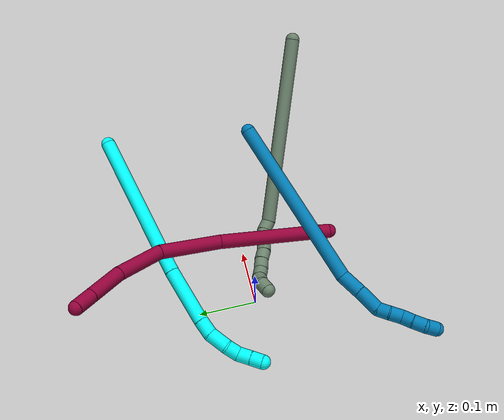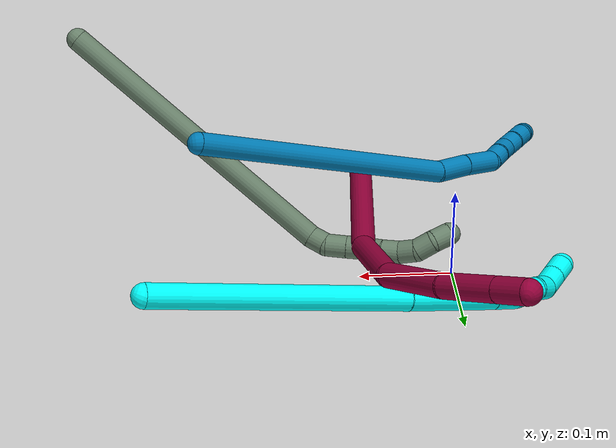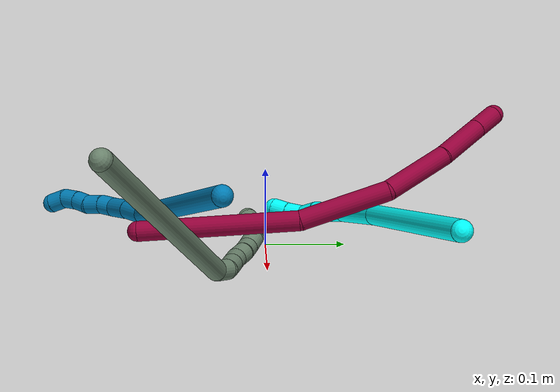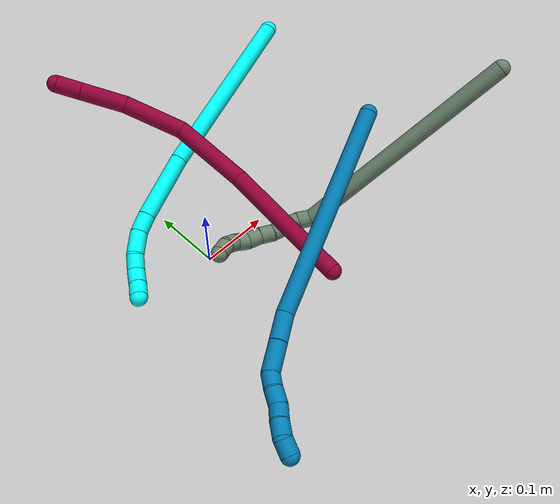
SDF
<sdf version="1.7">
 <world name="default">
  <model name="3">
   <static>0</static>
   <link name="3">
    <collision name="collision-cylinder-e_1_1_4">
     <pose>0.001723 -0.049345 0.125041 0.375868 0.012813 0.002437</pose>
     <geometry><cylinder><radius>0.0125</radius><length>0.268874</length></cylinder></geometry>
     <surface>
      <friction><ode><mu>1.16</mu><mu2>1.16</mu2><slip1>0</slip1><slip2>0</slip2></ode></friction>
      <contact><ode><kp>1e+06</kp><kd>1</kd><max_vel>0</max_vel><min_depth>0.001</min_depth></ode></contact>
     </surface>
    </collision>
    <visual name="visual-cylinder-e_1_1_4">
     <pose>0.001723 -0.049345 0.125041 0.375868 0.012813 0.002437</pose>
     <geometry><cylinder><radius>0.0125</radius><length>0.268874</length></cylinder></geometry>
     <material><ambient>0.003922 1 0.996078 1</ambient></material>
    </visual>
    <collision name="collision-cylinder-e_2_4_5">
     <pose>0.001564 -0.119449 0.295153 0.431629 -0.037897 -0.008309</pose>
     <geometry><cylinder><radius>0.0125</radius><length>0.099312</length></cylinder></geometry>
     <surface>
      <friction><ode><mu>1.16</mu><mu2>1.16</mu2><slip1>0</slip1><slip2>0</slip2></ode></friction>
      <contact><ode><kp>1e+06</kp><kd>1</kd><max_vel>0</max_vel><min_depth>0.001</min_depth></ode></contact>
     </surface>
    </collision>
    <visual name="visual-cylinder-e_2_4_5">
     <pose>0.001564 -0.119449 0.295153 0.431629 -0.037897 -0.008309</pose>
     <geometry><cylinder><radius>0.0125</radius><length>0.099312</length></cylinder></geometry>
     <material><ambient>0.003922 1 0.996078 1</ambient></material>
    </visual>
    <collision name="collision-cylinder-e_3_5_6">
     <pose>-0.001742 -0.146636 0.352458 0.483773 -0.102674 -0.025352</pose>
     <geometry><cylinder><radius>0.0125</radius><length>0.02779</length></cylinder></geometry>
     <surface>
      <friction><ode><mu>1.16</mu><mu2>1.16</mu2><slip1>0</slip1><slip2>0</slip2></ode></friction>
      <contact><ode><kp>1e+06</kp><kd>1</kd><max_vel>0</max_vel><min_depth>0.001</min_depth></ode></contact>
     </surface>
    </collision>
    <visual name="visual-cylinder-e_3_5_6">
     <pose>-0.001742 -0.146636 0.352458 0.483773 -0.102674 -0.025352</pose>
     <geometry><cylinder><radius>0.0125</radius><length>0.02779</length></cylinder></geometry>
     <material><ambient>0.003922 1 0.996078 1</ambient></material>
    </visual>
    <collision name="collision-cylinder-e_4_6_7">
     <pose>-0.006181 -0.165186 0.376831 0.784731 -0.174015 -0.072162</pose>
     <geometry><cylinder><radius>0.0125</radius><length>0.034832</length></cylinder></geometry>
     <surface>
      <friction><ode><mu>1.16</mu><mu2>1.16</mu2><slip1>0</slip1><slip2>0</slip2></ode></friction>
      <contact><ode><kp>1e+06</kp><kd>1</kd><max_vel>0</max_vel><min_depth>0.001</min_depth></ode></contact>
     </surface>
    </collision>
    <visual name="visual-cylinder-e_4_6_7">
     <pose>-0.006181 -0.165186 0.376831 0.784731 -0.174015 -0.072162</pose>
     <geometry><cylinder><radius>0.0125</radius><length>0.034832</length></cylinder></geometry>
     <material><ambient>0.003922 1 0.996078 1</ambient></material>
    </visual>
    <collision name="collision-cylinder-e_5_7_8">
     <pose>-0.01451 -0.184579 0.396211 0.787406 -0.477713 -0.201614</pose>
     <geometry><cylinder><radius>0.0125</radius><length>0.023116</length></cylinder></geometry>
     <surface>
      <friction><ode><mu>1.16</mu><mu2>1.16</mu2><slip1>0</slip1><slip2>0</slip2></ode></friction>
      <contact><ode><kp>1e+06</kp><kd>1</kd><max_vel>0</max_vel><min_depth>0.001</min_depth></ode></contact>
     </surface>
    </collision>
    <visual name="visual-cylinder-e_5_7_8">
     <pose>-0.01451 -0.184579 0.396211 0.787406 -0.477713 -0.201614</pose>
     <geometry><cylinder><radius>0.0125</radius><length>0.023116</length></cylinder></geometry>
     <material><ambient>0.003922 1 0.996078 1</ambient></material>
    </visual>
    <collision name="collision-cylinder-e_6_8_9">
     <pose>-0.021619 -0.202743 0.408472 1.13907 -0.148546 -0.095219</pose>
     <geometry><cylinder><radius>0.0125</radius><length>0.024251</length></cylinder></geometry>
     <surface>
      <friction><ode><mu>1.16</mu><mu2>1.16</mu2><slip1>0</slip1><slip2>0</slip2></ode></friction>
      <contact><ode><kp>1e+06</kp><kd>1</kd><max_vel>0</max_vel><min_depth>0.001</min_depth></ode></contact>
     </surface>
    </collision>
    <visual name="visual-cylinder-e_6_8_9">
     <pose>-0.021619 -0.202743 0.408472 1.13907 -0.148546 -0.095219</pose>
     <geometry><cylinder><radius>0.0125</radius><length>0.024251</length></cylinder></geometry>
     <material><ambient>0.003922 1 0.996078 1</ambient></material>
    </visual>
    <collision name="collision-cylinder-e_7_9_2">
     <pose>-0.024044 -0.223544 0.418018 1.14211 -0.057795 -0.037137</pose>
     <geometry><cylinder><radius>0.0125</radius><length>0.021825</length></cylinder></geometry>
     <surface>
      <friction><ode><mu>1.16</mu><mu2>1.16</mu2><slip1>0</slip1><slip2>0</slip2></ode></friction>
      <contact><ode><kp>1e+06</kp><kd>1</kd><max_vel>0</max_vel><min_depth>0.001</min_depth></ode></contact>
     </surface>
    </collision>
    <visual name="visual-cylinder-e_7_9_2">
     <pose>-0.024044 -0.223544 0.418018 1.14211 -0.057795 -0.037137</pose>
     <geometry><cylinder><radius>0.0125</radius><length>0.021825</length></cylinder></geometry>
     <material><ambient>0.003922 1 0.996078 1</ambient></material>
    </visual>
    <collision name="collision-sphere-2">
     <pose>-0.024674 -0.233452 0.422547 0 -0 0</pose>
     <geometry><sphere><radius>0.0125</radius></sphere></geometry>
     <surface>
      <friction><ode><mu>1.16</mu><mu2>1.16</mu2><slip1>0</slip1><slip2>0</slip2></ode></friction>
      <contact><ode><kp>1e+06</kp><kd>1</kd><max_vel>0</max_vel><min_depth>0.001</min_depth></ode></contact>
     </surface>
    </collision>
    <visual name="visual-sphere-2">
     <pose>-0.024674 -0.233452 0.422547 0 -0 0</pose>
     <geometry><sphere><radius>0.0125</radius></sphere></geometry>
     <material><ambient>0.003922 1 0.996078 1</ambient></material>
    </visual>
    <collision name="collision-sphere-9">
     <pose>-0.023413 -0.213635 0.41349 0 -0 0</pose>
     <geometry><sphere><radius>0.0125</radius></sphere></geometry>
     <surface>
      <friction><ode><mu>1.16</mu><mu2>1.16</mu2><slip1>0</slip1><slip2>0</slip2></ode></friction>
      <contact><ode><kp>1e+06</kp><kd>1</kd><max_vel>0</max_vel><min_depth>0.001</min_depth></ode></contact>
     </surface>
    </collision>
    <visual name="visual-sphere-9">
     <pose>-0.023413 -0.213635 0.41349 0 -0 0</pose>
     <geometry><sphere><radius>0.0125</radius></sphere></geometry>
     <material><ambient>0.003922 1 0.996078 1</ambient></material>
    </visual>
    <collision name="collision-sphere-4">
     <pose>0.003445 -0.09869 0.250083 0 -0 0</pose>
     <geometry><sphere><radius>0.0125</radius></sphere></geometry>
     <surface>
      <friction><ode><mu>1.16</mu><mu2>1.16</mu2><slip1>0</slip1><slip2>0</slip2></ode></friction>
      <contact><ode><kp>1e+06</kp><kd>1</kd><max_vel>0</max_vel><min_depth>0.001</min_depth></ode></contact>
     </surface>
    </collision>
    <visual name="visual-sphere-4">
     <pose>0.003445 -0.09869 0.250083 0 -0 0</pose>
     <geometry><sphere><radius>0.0125</radius></sphere></geometry>
     <material><ambient>0.003922 1 0.996078 1</ambient></material>
    </visual>
    <collision name="collision-sphere-1">
     <geometry><sphere><radius>0.0125</radius></sphere></geometry>
     <surface>
      <friction><ode><mu>1.16</mu><mu2>1.16</mu2><slip1>0</slip1><slip2>0</slip2></ode></friction>
      <contact><ode><kp>1e+06</kp><kd>1</kd><max_vel>0</max_vel><min_depth>0.001</min_depth></ode></contact>
     </surface>
    </collision>
    <visual name="visual-sphere-1">
     <geometry><sphere><radius>0.0125</radius></sphere></geometry>
     <material><ambient>0.003922 1 0.996078 1</ambient></material>
    </visual>
    <collision name="collision-sphere-8">
     <pose>-0.019824 -0.191852 0.403454 0 -0 0</pose>
     <geometry><sphere><radius>0.0125</radius></sphere></geometry>
     <surface>
      <friction><ode><mu>1.16</mu><mu2>1.16</mu2><slip1>0</slip1><slip2>0</slip2></ode></friction>
      <contact><ode><kp>1e+06</kp><kd>1</kd><max_vel>0</max_vel><min_depth>0.001</min_depth></ode></contact>
     </surface>
    </collision>
    <visual name="visual-sphere-8">
     <pose>-0.019824 -0.191852 0.403454 0 -0 0</pose>
     <geometry><sphere><radius>0.0125</radius></sphere></geometry>
     <material><ambient>0.003922 1 0.996078 1</ambient></material>
    </visual>
    <collision name="collision-sphere-5">
     <pose>-0.000318 -0.140208 0.340222 0 -0 0</pose>
     <geometry><sphere><radius>0.0125</radius></sphere></geometry>
     <surface>
      <friction><ode><mu>1.16</mu><mu2>1.16</mu2><slip1>0</slip1><slip2>0</slip2></ode></friction>
      <contact><ode><kp>1e+06</kp><kd>1</kd><max_vel>0</max_vel><min_depth>0.001</min_depth></ode></contact>
     </surface>
    </collision>
    <visual name="visual-sphere-5">
     <pose>-0.000318 -0.140208 0.340222 0 -0 0</pose>
     <geometry><sphere><radius>0.0125</radius></sphere></geometry>
     <material><ambient>0.003922 1 0.996078 1</ambient></material>
    </visual>
    <collision name="collision-sphere-6">
     <pose>-0.003166 -0.153065 0.364693 0 -0 0</pose>
     <geometry><sphere><radius>0.0125</radius></sphere></geometry>
     <surface>
      <friction><ode><mu>1.16</mu><mu2>1.16</mu2><slip1>0</slip1><slip2>0</slip2></ode></friction>
      <contact><ode><kp>1e+06</kp><kd>1</kd><max_vel>0</max_vel><min_depth>0.001</min_depth></ode></contact>
     </surface>
    </collision>
    <visual name="visual-sphere-6">
     <pose>-0.003166 -0.153065 0.364693 0 -0 0</pose>
     <geometry><sphere><radius>0.0125</radius></sphere></geometry>
     <material><ambient>0.003922 1 0.996078 1</ambient></material>
    </visual>
    <collision name="collision-sphere-7">
     <pose>-0.009197 -0.177307 0.388968 0 -0 0</pose>
     <geometry><sphere><radius>0.0125</radius></sphere></geometry>
     <surface>
      <friction><ode><mu>1.16</mu><mu2>1.16</mu2><slip1>0</slip1><slip2>0</slip2></ode></friction>
      <contact><ode><kp>1e+06</kp><kd>1</kd><max_vel>0</max_vel><min_depth>0.001</min_depth></ode></contact>
     </surface>
    </collision>
    <visual name="visual-sphere-7">
     <pose>-0.009197 -0.177307 0.388968 0 -0 0</pose>
     <geometry><sphere><radius>0.0125</radius></sphere></geometry>
     <material><ambient>0.003922 1 0.996078 1</ambient></material>
    </visual>
    <inertial>
     <pose>-0.002059 -0.098043 0.228082 0 -0 0</pose>
     <mass>0.5</mass>
     <inertia>
      <ixx>0.001729</ixx>
      <ixy>0</ixy>
      <ixz>0</ixz>
      <iyy>0.001587</iyy>
      <iyz>0</iyz>
      <izz>0.000661</izz>
     </inertia>
    </inertial>
   </link>
   <pose>0.318278 0.198905 0.116291 -2.40014 -1.02735 2.22705</pose>
  </model>
  <model name="8">
   <static>0</static>
   <link name="8">
    <collision name="collision-cylinder-e_1_1_4">
     <pose>-0.006684 0.027369 0.094649 -0.281487 -0.067739 0.009601</pose>
     <geometry><cylinder><radius>0.0125</radius><length>0.197507</length></cylinder></geometry>
     <surface>
      <friction><ode><mu>1.16</mu><mu2>1.16</mu2><slip1>0</slip1><slip2>0</slip2></ode></friction>
      <contact><ode><kp>1e+06</kp><kd>1</kd><max_vel>0</max_vel><min_depth>0.001</min_depth></ode></contact>
     </surface>
    </collision>
    <visual name="visual-cylinder-e_1_1_4">
     <pose>-0.006684 0.027369 0.094649 -0.281487 -0.067739 0.009601</pose>
     <geometry><cylinder><radius>0.0125</radius><length>0.197507</length></cylinder></geometry>
     <material><ambient>0.584314 0 0.227451 1</ambient></material>
    </visual>
    <collision name="collision-cylinder-e_2_4_5">
     <pose>-0.0311 0.076956 0.237947 -0.428398 -0.32014 0.070214</pose>
     <geometry><cylinder><radius>0.0125</radius><length>0.112689</length></cylinder></geometry>
     <surface>
      <friction><ode><mu>1.16</mu><mu2>1.16</mu2><slip1>0</slip1><slip2>0</slip2></ode></friction>
      <contact><ode><kp>1e+06</kp><kd>1</kd><max_vel>0</max_vel><min_depth>0.001</min_depth></ode></contact>
     </surface>
    </collision>
    <visual name="visual-cylinder-e_2_4_5">
     <pose>-0.0311 0.076956 0.237947 -0.428398 -0.32014 0.070214</pose>
     <geometry><cylinder><radius>0.0125</radius><length>0.112689</length></cylinder></geometry>
     <material><ambient>0.584314 0 0.227451 1</ambient></material>
    </visual>
    <collision name="collision-cylinder-e_3_5_6">
     <pose>-0.069662 0.127865 0.313478 -0.81796 -0.48721 0.214617</pose>
     <geometry><cylinder><radius>0.0125</radius><length>0.088989</length></cylinder></geometry>
     <surface>
      <friction><ode><mu>1.16</mu><mu2>1.16</mu2><slip1>0</slip1><slip2>0</slip2></ode></friction>
      <contact><ode><kp>1e+06</kp><kd>1</kd><max_vel>0</max_vel><min_depth>0.001</min_depth></ode></contact>
     </surface>
    </collision>
    <visual name="visual-cylinder-e_3_5_6">
     <pose>-0.069662 0.127865 0.313478 -0.81796 -0.48721 0.214617</pose>
     <geometry><cylinder><radius>0.0125</radius><length>0.088989</length></cylinder></geometry>
     <material><ambient>0.584314 0 0.227451 1</ambient></material>
    </visual>
    <collision name="collision-cylinder-e_4_6_7">
     <pose>-0.10698 0.180942 0.355278 -1.02176 -0.523143 0.297883</pose>
     <geometry><cylinder><radius>0.0125</radius><length>0.066001</length></cylinder></geometry>
     <surface>
      <friction><ode><mu>1.16</mu><mu2>1.16</mu2><slip1>0</slip1><slip2>0</slip2></ode></friction>
      <contact><ode><kp>1e+06</kp><kd>1</kd><max_vel>0</max_vel><min_depth>0.001</min_depth></ode></contact>
     </surface>
    </collision>
    <visual name="visual-cylinder-e_4_6_7">
     <pose>-0.10698 0.180942 0.355278 -1.02176 -0.523143 0.297883</pose>
     <geometry><cylinder><radius>0.0125</radius><length>0.066001</length></cylinder></geometry>
     <material><ambient>0.584314 0 0.227451 1</ambient></material>
    </visual>
    <collision name="collision-cylinder-e_5_7_2">
     <pose>-0.132148 0.218177 0.378103 -1.01916 -0.522078 0.296366</pose>
     <geometry><cylinder><radius>0.0125</radius><length>0.034814</length></cylinder></geometry>
     <surface>
      <friction><ode><mu>1.16</mu><mu2>1.16</mu2><slip1>0</slip1><slip2>0</slip2></ode></friction>
      <contact><ode><kp>1e+06</kp><kd>1</kd><max_vel>0</max_vel><min_depth>0.001</min_depth></ode></contact>
     </surface>
    </collision>
    <visual name="visual-cylinder-e_5_7_2">
     <pose>-0.132148 0.218177 0.378103 -1.01916 -0.522078 0.296366</pose>
     <geometry><cylinder><radius>0.0125</radius><length>0.034814</length></cylinder></geometry>
     <material><ambient>0.584314 0 0.227451 1</ambient></material>
    </visual>
    <collision name="collision-sphere-2">
     <pose>-0.140829 0.231027 0.386011 0 -0 0</pose>
     <geometry><sphere><radius>0.0125</radius></sphere></geometry>
     <surface>
      <friction><ode><mu>1.16</mu><mu2>1.16</mu2><slip1>0</slip1><slip2>0</slip2></ode></friction>
      <contact><ode><kp>1e+06</kp><kd>1</kd><max_vel>0</max_vel><min_depth>0.001</min_depth></ode></contact>
     </surface>
    </collision>
    <visual name="visual-sphere-2">
     <pose>-0.140829 0.231027 0.386011 0 -0 0</pose>
     <geometry><sphere><radius>0.0125</radius></sphere></geometry>
     <material><ambient>0.584314 0 0.227451 1</ambient></material>
    </visual>
    <collision name="collision-sphere-7">
     <pose>-0.123467 0.205327 0.370196 0 -0 0</pose>
     <geometry><sphere><radius>0.0125</radius></sphere></geometry>
     <surface>
      <friction><ode><mu>1.16</mu><mu2>1.16</mu2><slip1>0</slip1><slip2>0</slip2></ode></friction>
      <contact><ode><kp>1e+06</kp><kd>1</kd><max_vel>0</max_vel><min_depth>0.001</min_depth></ode></contact>
     </surface>
    </collision>
    <visual name="visual-sphere-7">
     <pose>-0.123467 0.205327 0.370196 0 -0 0</pose>
     <geometry><sphere><radius>0.0125</radius></sphere></geometry>
     <material><ambient>0.584314 0 0.227451 1</ambient></material>
    </visual>
    <collision name="collision-sphere-6">
     <pose>-0.090493 0.156557 0.340359 0 -0 0</pose>
     <geometry><sphere><radius>0.0125</radius></sphere></geometry>
     <surface>
      <friction><ode><mu>1.16</mu><mu2>1.16</mu2><slip1>0</slip1><slip2>0</slip2></ode></friction>
      <contact><ode><kp>1e+06</kp><kd>1</kd><max_vel>0</max_vel><min_depth>0.001</min_depth></ode></contact>
     </surface>
    </collision>
    <visual name="visual-sphere-6">
     <pose>-0.090493 0.156557 0.340359 0 -0 0</pose>
     <geometry><sphere><radius>0.0125</radius></sphere></geometry>
     <material><ambient>0.584314 0 0.227451 1</ambient></material>
    </visual>
    <collision name="collision-sphere-5">
     <pose>-0.048832 0.099173 0.286596 0 -0 0</pose>
     <geometry><sphere><radius>0.0125</radius></sphere></geometry>
     <surface>
      <friction><ode><mu>1.16</mu><mu2>1.16</mu2><slip1>0</slip1><slip2>0</slip2></ode></friction>
      <contact><ode><kp>1e+06</kp><kd>1</kd><max_vel>0</max_vel><min_depth>0.001</min_depth></ode></contact>
     </surface>
    </collision>
    <visual name="visual-sphere-5">
     <pose>-0.048832 0.099173 0.286596 0 -0 0</pose>
     <geometry><sphere><radius>0.0125</radius></sphere></geometry>
     <material><ambient>0.584314 0 0.227451 1</ambient></material>
    </visual>
    <collision name="collision-sphere-1">
     <geometry><sphere><radius>0.0125</radius></sphere></geometry>
     <surface>
      <friction><ode><mu>1.16</mu><mu2>1.16</mu2><slip1>0</slip1><slip2>0</slip2></ode></friction>
      <contact><ode><kp>1e+06</kp><kd>1</kd><max_vel>0</max_vel><min_depth>0.001</min_depth></ode></contact>
     </surface>
    </collision>
    <visual name="visual-sphere-1">
     <geometry><sphere><radius>0.0125</radius></sphere></geometry>
     <material><ambient>0.584314 0 0.227451 1</ambient></material>
    </visual>
    <collision name="collision-sphere-4">
     <pose>-0.013369 0.054739 0.189299 0 -0 0</pose>
     <geometry><sphere><radius>0.0125</radius></sphere></geometry>
     <surface>
      <friction><ode><mu>1.16</mu><mu2>1.16</mu2><slip1>0</slip1><slip2>0</slip2></ode></friction>
      <contact><ode><kp>1e+06</kp><kd>1</kd><max_vel>0</max_vel><min_depth>0.001</min_depth></ode></contact>
     </surface>
    </collision>
    <visual name="visual-sphere-4">
     <pose>-0.013369 0.054739 0.189299 0 -0 0</pose>
     <geometry><sphere><radius>0.0125</radius></sphere></geometry>
     <material><ambient>0.584314 0 0.227451 1</ambient></material>
    </visual>
    <inertial>
     <pose>-0.045371 0.089988 0.220032 0 -0 0</pose>
     <mass>0.5</mass>
     <inertia>
      <ixx>0.000868</ixx>
      <ixy>0</ixy>
      <ixz>0</ixz>
      <iyy>0.000855</iyy>
      <iyz>0</iyz>
      <izz>-0.000134</izz>
     </inertia>
    </inertial>
   </link>
   <pose>0.085495 -0.15665 0.045653 -1.20466 1.33478 -0.008594</pose>
  </model>
  <model name="9">
   <static>0</static>
   <link name="9">
    <collision name="collision-cylinder-e_1_1_4">
     <pose>0.005553 -0.058664 -0.143238 2.75288 0.035858 0.181683</pose>
     <geometry><cylinder><radius>0.0125</radius><length>0.309771</length></cylinder></geometry>
     <surface>
      <friction><ode><mu>1.16</mu><mu2>1.16</mu2><slip1>0</slip1><slip2>0</slip2></ode></friction>
      <contact><ode><kp>1e+06</kp><kd>1</kd><max_vel>0</max_vel><min_depth>0.001</min_depth></ode></contact>
     </surface>
    </collision>
    <visual name="visual-cylinder-e_1_1_4">
     <pose>0.005553 -0.058664 -0.143238 2.75288 0.035858 0.181683</pose>
     <geometry><cylinder><radius>0.0125</radius><length>0.309771</length></cylinder></geometry>
     <material><ambient>0 0.490196 0.709804 1</ambient></material>
    </visual>
    <collision name="collision-cylinder-e_2_4_5">
     <pose>0.005928 -0.123874 -0.304929 2.8007 -0.258506 -1.2936</pose>
     <geometry><cylinder><radius>0.0125</radius><length>0.040504</length></cylinder></geometry>
     <surface>
      <friction><ode><mu>1.16</mu><mu2>1.16</mu2><slip1>0</slip1><slip2>0</slip2></ode></friction>
      <contact><ode><kp>1e+06</kp><kd>1</kd><max_vel>0</max_vel><min_depth>0.001</min_depth></ode></contact>
     </surface>
    </collision>
    <visual name="visual-cylinder-e_2_4_5">
     <pose>0.005928 -0.123874 -0.304929 2.8007 -0.258506 -1.2936</pose>
     <geometry><cylinder><radius>0.0125</radius><length>0.040504</length></cylinder></geometry>
     <material><ambient>0 0.490196 0.709804 1</ambient></material>
    </visual>
    <collision name="collision-cylinder-e_3_5_6">
     <pose>-0.003495 -0.138254 -0.342609 2.75464 -0.201741 -0.953665</pose>
     <geometry><cylinder><radius>0.0125</radius><length>0.042384</length></cylinder></geometry>
     <surface>
      <friction><ode><mu>1.16</mu><mu2>1.16</mu2><slip1>0</slip1><slip2>0</slip2></ode></friction>
      <contact><ode><kp>1e+06</kp><kd>1</kd><max_vel>0</max_vel><min_depth>0.001</min_depth></ode></contact>
     </surface>
    </collision>
    <visual name="visual-cylinder-e_3_5_6">
     <pose>-0.003495 -0.138254 -0.342609 2.75464 -0.201741 -0.953665</pose>
     <geometry><cylinder><radius>0.0125</radius><length>0.042384</length></cylinder></geometry>
     <material><ambient>0 0.490196 0.709804 1</ambient></material>
    </visual>
    <collision name="collision-cylinder-e_4_6_7">
     <pose>-0.013823 -0.150594 -0.368836 2.56978 -0.630924 -1.67516</pose>
     <geometry><cylinder><radius>0.0125</radius><length>0.020619</length></cylinder></geometry>
     <surface>
      <friction><ode><mu>1.16</mu><mu2>1.16</mu2><slip1>0</slip1><slip2>0</slip2></ode></friction>
      <contact><ode><kp>1e+06</kp><kd>1</kd><max_vel>0</max_vel><min_depth>0.001</min_depth></ode></contact>
     </surface>
    </collision>
    <visual name="visual-cylinder-e_4_6_7">
     <pose>-0.013823 -0.150594 -0.368836 2.56978 -0.630924 -1.67516</pose>
     <geometry><cylinder><radius>0.0125</radius><length>0.020619</length></cylinder></geometry>
     <material><ambient>0 0.490196 0.709804 1</ambient></material>
    </visual>
    <collision name="collision-cylinder-e_5_7_8">
     <pose>-0.025958 -0.162064 -0.382615 2.34263 -0.557089 -1.19077</pose>
     <geometry><cylinder><radius>0.0125</radius><length>0.022899</length></cylinder></geometry>
     <surface>
      <friction><ode><mu>1.16</mu><mu2>1.16</mu2><slip1>0</slip1><slip2>0</slip2></ode></friction>
      <contact><ode><kp>1e+06</kp><kd>1</kd><max_vel>0</max_vel><min_depth>0.001</min_depth></ode></contact>
     </surface>
    </collision>
    <visual name="visual-cylinder-e_5_7_8">
     <pose>-0.025958 -0.162064 -0.382615 2.34263 -0.557089 -1.19077</pose>
     <geometry><cylinder><radius>0.0125</radius><length>0.022899</length></cylinder></geometry>
     <material><ambient>0 0.490196 0.709804 1</ambient></material>
    </visual>
    <collision name="collision-cylinder-e_6_8_9">
     <pose>-0.037592 -0.172377 -0.396995 2.72666 -0.591517 -1.93249</pose>
     <geometry><cylinder><radius>0.0125</radius><length>0.020014</length></cylinder></geometry>
     <surface>
      <friction><ode><mu>1.16</mu><mu2>1.16</mu2><slip1>0</slip1><slip2>0</slip2></ode></friction>
      <contact><ode><kp>1e+06</kp><kd>1</kd><max_vel>0</max_vel><min_depth>0.001</min_depth></ode></contact>
     </surface>
    </collision>
    <visual name="visual-cylinder-e_6_8_9">
     <pose>-0.037592 -0.172377 -0.396995 2.72666 -0.591517 -1.93249</pose>
     <geometry><cylinder><radius>0.0125</radius><length>0.020014</length></cylinder></geometry>
     <material><ambient>0 0.490196 0.709804 1</ambient></material>
    </visual>
    <collision name="collision-cylinder-e_7_9_10">
     <pose>-0.049309 -0.181049 -0.412269 2.53501 -0.581426 -1.52586</pose>
     <geometry><cylinder><radius>0.0125</radius><length>0.022348</length></cylinder></geometry>
     <surface>
      <friction><ode><mu>1.16</mu><mu2>1.16</mu2><slip1>0</slip1><slip2>0</slip2></ode></friction>
      <contact><ode><kp>1e+06</kp><kd>1</kd><max_vel>0</max_vel><min_depth>0.001</min_depth></ode></contact>
     </surface>
    </collision>
    <visual name="visual-cylinder-e_7_9_10">
     <pose>-0.049309 -0.181049 -0.412269 2.53501 -0.581426 -1.52586</pose>
     <geometry><cylinder><radius>0.0125</radius><length>0.022348</length></cylinder></geometry>
     <material><ambient>0 0.490196 0.709804 1</ambient></material>
    </visual>
    <collision name="collision-cylinder-e_8_10_2">
     <pose>-0.059615 -0.195207 -0.424381 2.03649 -0.399057 -0.633793</pose>
     <geometry><cylinder><radius>0.0125</radius><length>0.021461</length></cylinder></geometry>
     <surface>
      <friction><ode><mu>1.16</mu><mu2>1.16</mu2><slip1>0</slip1><slip2>0</slip2></ode></friction>
      <contact><ode><kp>1e+06</kp><kd>1</kd><max_vel>0</max_vel><min_depth>0.001</min_depth></ode></contact>
     </surface>
    </collision>
    <visual name="visual-cylinder-e_8_10_2">
     <pose>-0.059615 -0.195207 -0.424381 2.03649 -0.399057 -0.633793</pose>
     <geometry><cylinder><radius>0.0125</radius><length>0.021461</length></cylinder></geometry>
     <material><ambient>0 0.490196 0.709804 1</ambient></material>
    </visual>
    <collision name="collision-sphere-2">
     <pose>-0.063785 -0.204041 -0.42882 0 -0 0</pose>
     <geometry><sphere><radius>0.0125</radius></sphere></geometry>
     <surface>
      <friction><ode><mu>1.16</mu><mu2>1.16</mu2><slip1>0</slip1><slip2>0</slip2></ode></friction>
      <contact><ode><kp>1e+06</kp><kd>1</kd><max_vel>0</max_vel><min_depth>0.001</min_depth></ode></contact>
     </surface>
    </collision>
    <visual name="visual-sphere-2">
     <pose>-0.063785 -0.204041 -0.42882 0 -0 0</pose>
     <geometry><sphere><radius>0.0125</radius></sphere></geometry>
     <material><ambient>0 0.490196 0.709804 1</ambient></material>
    </visual>
    <collision name="collision-sphere-10">
     <pose>-0.055446 -0.186372 -0.419941 0 -0 0</pose>
     <geometry><sphere><radius>0.0125</radius></sphere></geometry>
     <surface>
      <friction><ode><mu>1.16</mu><mu2>1.16</mu2><slip1>0</slip1><slip2>0</slip2></ode></friction>
      <contact><ode><kp>1e+06</kp><kd>1</kd><max_vel>0</max_vel><min_depth>0.001</min_depth></ode></contact>
     </surface>
    </collision>
    <visual name="visual-sphere-10">
     <pose>-0.055446 -0.186372 -0.419941 0 -0 0</pose>
     <geometry><sphere><radius>0.0125</radius></sphere></geometry>
     <material><ambient>0 0.490196 0.709804 1</ambient></material>
    </visual>
    <collision name="collision-sphere-9">
     <pose>-0.043172 -0.175726 -0.404597 0 -0 0</pose>
     <geometry><sphere><radius>0.0125</radius></sphere></geometry>
     <surface>
      <friction><ode><mu>1.16</mu><mu2>1.16</mu2><slip1>0</slip1><slip2>0</slip2></ode></friction>
      <contact><ode><kp>1e+06</kp><kd>1</kd><max_vel>0</max_vel><min_depth>0.001</min_depth></ode></contact>
     </surface>
    </collision>
    <visual name="visual-sphere-9">
     <pose>-0.043172 -0.175726 -0.404597 0 -0 0</pose>
     <geometry><sphere><radius>0.0125</radius></sphere></geometry>
     <material><ambient>0 0.490196 0.709804 1</ambient></material>
    </visual>
    <collision name="collision-sphere-4">
     <pose>0.011105 -0.117328 -0.286477 0 -0 0</pose>
     <geometry><sphere><radius>0.0125</radius></sphere></geometry>
     <surface>
      <friction><ode><mu>1.16</mu><mu2>1.16</mu2><slip1>0</slip1><slip2>0</slip2></ode></friction>
      <contact><ode><kp>1e+06</kp><kd>1</kd><max_vel>0</max_vel><min_depth>0.001</min_depth></ode></contact>
     </surface>
    </collision>
    <visual name="visual-sphere-4">
     <pose>0.011105 -0.117328 -0.286477 0 -0 0</pose>
     <geometry><sphere><radius>0.0125</radius></sphere></geometry>
     <material><ambient>0 0.490196 0.709804 1</ambient></material>
    </visual>
    <collision name="collision-sphere-1">
     <geometry><sphere><radius>0.0125</radius></sphere></geometry>
     <surface>
      <friction><ode><mu>1.16</mu><mu2>1.16</mu2><slip1>0</slip1><slip2>0</slip2></ode></friction>
      <contact><ode><kp>1e+06</kp><kd>1</kd><max_vel>0</max_vel><min_depth>0.001</min_depth></ode></contact>
     </surface>
    </collision>
    <visual name="visual-sphere-1">
     <geometry><sphere><radius>0.0125</radius></sphere></geometry>
     <material><ambient>0 0.490196 0.709804 1</ambient></material>
    </visual>
    <collision name="collision-sphere-8">
     <pose>-0.032012 -0.169029 -0.389393 0 -0 0</pose>
     <geometry><sphere><radius>0.0125</radius></sphere></geometry>
     <surface>
      <friction><ode><mu>1.16</mu><mu2>1.16</mu2><slip1>0</slip1><slip2>0</slip2></ode></friction>
      <contact><ode><kp>1e+06</kp><kd>1</kd><max_vel>0</max_vel><min_depth>0.001</min_depth></ode></contact>
     </surface>
    </collision>
    <visual name="visual-sphere-8">
     <pose>-0.032012 -0.169029 -0.389393 0 -0 0</pose>
     <geometry><sphere><radius>0.0125</radius></sphere></geometry>
     <material><ambient>0 0.490196 0.709804 1</ambient></material>
    </visual>
    <collision name="collision-sphere-5">
     <pose>0.000751 -0.13042 -0.323382 0 -0 0</pose>
     <geometry><sphere><radius>0.0125</radius></sphere></geometry>
     <surface>
      <friction><ode><mu>1.16</mu><mu2>1.16</mu2><slip1>0</slip1><slip2>0</slip2></ode></friction>
      <contact><ode><kp>1e+06</kp><kd>1</kd><max_vel>0</max_vel><min_depth>0.001</min_depth></ode></contact>
     </surface>
    </collision>
    <visual name="visual-sphere-5">
     <pose>0.000751 -0.13042 -0.323382 0 -0 0</pose>
     <geometry><sphere><radius>0.0125</radius></sphere></geometry>
     <material><ambient>0 0.490196 0.709804 1</ambient></material>
    </visual>
    <collision name="collision-sphere-6">
     <pose>-0.007742 -0.146089 -0.361836 0 -0 0</pose>
     <geometry><sphere><radius>0.0125</radius></sphere></geometry>
     <surface>
      <friction><ode><mu>1.16</mu><mu2>1.16</mu2><slip1>0</slip1><slip2>0</slip2></ode></friction>
      <contact><ode><kp>1e+06</kp><kd>1</kd><max_vel>0</max_vel><min_depth>0.001</min_depth></ode></contact>
     </surface>
    </collision>
    <visual name="visual-sphere-6">
     <pose>-0.007742 -0.146089 -0.361836 0 -0 0</pose>
     <geometry><sphere><radius>0.0125</radius></sphere></geometry>
     <material><ambient>0 0.490196 0.709804 1</ambient></material>
    </visual>
    <collision name="collision-sphere-7">
     <pose>-0.019905 -0.155099 -0.375837 0 -0 0</pose>
     <geometry><sphere><radius>0.0125</radius></sphere></geometry>
     <surface>
      <friction><ode><mu>1.16</mu><mu2>1.16</mu2><slip1>0</slip1><slip2>0</slip2></ode></friction>
      <contact><ode><kp>1e+06</kp><kd>1</kd><max_vel>0</max_vel><min_depth>0.001</min_depth></ode></contact>
     </surface>
    </collision>
    <visual name="visual-sphere-7">
     <pose>-0.019905 -0.155099 -0.375837 0 -0 0</pose>
     <geometry><sphere><radius>0.0125</radius></sphere></geometry>
     <material><ambient>0 0.490196 0.709804 1</ambient></material>
    </visual>
    <inertial>
     <pose>-0.004402 -0.095102 -0.227752 0 -0 0</pose>
     <mass>0.5</mass>
     <inertia>
      <ixx>0.00288</ixx>
      <ixy>0</ixy>
      <ixz>0</ixz>
      <iyy>-0.001848</iyy>
      <iyz>0</iyz>
      <izz>0.000838</izz>
     </inertia>
    </inertial>
   </link>
   <pose>0.268201 -0.051594 0.14142 1.55531 0.689715 1.69705</pose>
  </model>
  <model name="17">
   <static>0</static>
   <link name="17">
    <collision name="collision-cylinder-e_1_1_4">
     <pose>-0.000366 0.000151 -0.168251 -3.1407 -0.002175 2.35884</pose>
     <geometry><cylinder><radius>0.0125</radius><length>0.336504</length></cylinder></geometry>
     <surface>
      <friction><ode><mu>1.16</mu><mu2>1.16</mu2><slip1>0</slip1><slip2>0</slip2></ode></friction>
      <contact><ode><kp>1e+06</kp><kd>1</kd><max_vel>0</max_vel><min_depth>0.001</min_depth></ode></contact>
     </surface>
    </collision>
    <visual name="visual-cylinder-e_1_1_4">
     <pose>-0.000366 0.000151 -0.168251 -3.1407 -0.002175 2.35884</pose>
     <geometry><cylinder><radius>0.0125</radius><length>0.336504</length></cylinder></geometry>
     <material><ambient>0.415686 0.509804 0.423529 1</ambient></material>
    </visual>
    <collision name="collision-cylinder-e_2_4_5">
     <pose>-0.002368 0.005147 -0.345328 -2.63957 -0.161091 0.609954</pose>
     <geometry><cylinder><radius>0.0125</radius><length>0.020399</length></cylinder></geometry>
     <surface>
      <friction><ode><mu>1.16</mu><mu2>1.16</mu2><slip1>0</slip1><slip2>0</slip2></ode></friction>
      <contact><ode><kp>1e+06</kp><kd>1</kd><max_vel>0</max_vel><min_depth>0.001</min_depth></ode></contact>
     </surface>
    </collision>
    <visual name="visual-cylinder-e_2_4_5">
     <pose>-0.002368 0.005147 -0.345328 -2.63957 -0.161091 0.609954</pose>
     <geometry><cylinder><radius>0.0125</radius><length>0.020399</length></cylinder></geometry>
     <material><ambient>0.415686 0.509804 0.423529 1</ambient></material>
    </visual>
    <collision name="collision-cylinder-e_3_5_6">
     <pose>-0.010264 0.012768 -0.363288 -2.84641 -0.580332 2.21765</pose>
     <geometry><cylinder><radius>0.0125</radius><length>0.022833</length></cylinder></geometry>
     <surface>
      <friction><ode><mu>1.16</mu><mu2>1.16</mu2><slip1>0</slip1><slip2>0</slip2></ode></friction>
      <contact><ode><kp>1e+06</kp><kd>1</kd><max_vel>0</max_vel><min_depth>0.001</min_depth></ode></contact>
     </surface>
    </collision>
    <visual name="visual-cylinder-e_3_5_6">
     <pose>-0.010264 0.012768 -0.363288 -2.84641 -0.580332 2.21765</pose>
     <geometry><cylinder><radius>0.0125</radius><length>0.022833</length></cylinder></geometry>
     <material><ambient>0.415686 0.509804 0.423529 1</ambient></material>
    </visual>
    <collision name="collision-cylinder-e_4_6_7">
     <pose>-0.022203 0.018034 -0.380411 -2.83967 -0.596352 2.22237</pose>
     <geometry><cylinder><radius>0.0125</radius><length>0.020224</length></cylinder></geometry>
     <surface>
      <friction><ode><mu>1.16</mu><mu2>1.16</mu2><slip1>0</slip1><slip2>0</slip2></ode></friction>
      <contact><ode><kp>1e+06</kp><kd>1</kd><max_vel>0</max_vel><min_depth>0.001</min_depth></ode></contact>
     </surface>
    </collision>
    <visual name="visual-cylinder-e_4_6_7">
     <pose>-0.022203 0.018034 -0.380411 -2.83967 -0.596352 2.22237</pose>
     <geometry><cylinder><radius>0.0125</radius><length>0.020224</length></cylinder></geometry>
     <material><ambient>0.415686 0.509804 0.423529 1</ambient></material>
    </visual>
    <collision name="collision-cylinder-e_5_7_8">
     <pose>-0.032608 0.025084 -0.395953 -2.59823 -0.49167 1.46642</pose>
     <geometry><cylinder><radius>0.0125</radius><length>0.020021</length></cylinder></geometry>
     <surface>
      <friction><ode><mu>1.16</mu><mu2>1.16</mu2><slip1>0</slip1><slip2>0</slip2></ode></friction>
      <contact><ode><kp>1e+06</kp><kd>1</kd><max_vel>0</max_vel><min_depth>0.001</min_depth></ode></contact>
     </surface>
    </collision>
    <visual name="visual-cylinder-e_5_7_8">
     <pose>-0.032608 0.025084 -0.395953 -2.59823 -0.49167 1.46642</pose>
     <geometry><cylinder><radius>0.0125</radius><length>0.020021</length></cylinder></geometry>
     <material><ambient>0.415686 0.509804 0.423529 1</ambient></material>
    </visual>
    <collision name="collision-cylinder-e_6_8_9">
     <pose>-0.042947 0.032654 -0.411219 -2.76982 -0.595879 2.04261</pose>
     <geometry><cylinder><radius>0.0125</radius><length>0.020003</length></cylinder></geometry>
     <surface>
      <friction><ode><mu>1.16</mu><mu2>1.16</mu2><slip1>0</slip1><slip2>0</slip2></ode></friction>
      <contact><ode><kp>1e+06</kp><kd>1</kd><max_vel>0</max_vel><min_depth>0.001</min_depth></ode></contact>
     </surface>
    </collision>
    <visual name="visual-cylinder-e_6_8_9">
     <pose>-0.042947 0.032654 -0.411219 -2.76982 -0.595879 2.04261</pose>
     <geometry><cylinder><radius>0.0125</radius><length>0.020003</length></cylinder></geometry>
     <material><ambient>0.415686 0.509804 0.423529 1</ambient></material>
    </visual>
    <collision name="collision-cylinder-e_7_9_10">
     <pose>-0.054866 0.040821 -0.424729 -2.41434 -0.682277 1.5014</pose>
     <geometry><cylinder><radius>0.0125</radius><length>0.02</length></cylinder></geometry>
     <surface>
      <friction><ode><mu>1.16</mu><mu2>1.16</mu2><slip1>0</slip1><slip2>0</slip2></ode></friction>
      <contact><ode><kp>1e+06</kp><kd>1</kd><max_vel>0</max_vel><min_depth>0.001</min_depth></ode></contact>
     </surface>
    </collision>
    <visual name="visual-cylinder-e_7_9_10">
     <pose>-0.054866 0.040821 -0.424729 -2.41434 -0.682277 1.5014</pose>
     <geometry><cylinder><radius>0.0125</radius><length>0.02</length></cylinder></geometry>
     <material><ambient>0.415686 0.509804 0.423529 1</ambient></material>
    </visual>
    <collision name="collision-cylinder-e_8_10_11">
     <pose>-0.070217 0.048779 -0.433744 -2.42567 -1.13031 2.0757</pose>
     <geometry><cylinder><radius>0.0125</radius><length>0.02</length></cylinder></geometry>
     <surface>
      <friction><ode><mu>1.16</mu><mu2>1.16</mu2><slip1>0</slip1><slip2>0</slip2></ode></friction>
      <contact><ode><kp>1e+06</kp><kd>1</kd><max_vel>0</max_vel><min_depth>0.001</min_depth></ode></contact>
     </surface>
    </collision>
    <visual name="visual-cylinder-e_8_10_11">
     <pose>-0.070217 0.048779 -0.433744 -2.42567 -1.13031 2.0757</pose>
     <geometry><cylinder><radius>0.0125</radius><length>0.02</length></cylinder></geometry>
     <material><ambient>0.415686 0.509804 0.423529 1</ambient></material>
    </visual>
    <collision name="collision-cylinder-e_9_11_2">
     <pose>-0.088243 0.05027 -0.441178 2.84082 -1.11378 -2.66413</pose>
     <geometry><cylinder><radius>0.0125</radius><length>0.020015</length></cylinder></geometry>
     <surface>
      <friction><ode><mu>1.16</mu><mu2>1.16</mu2><slip1>0</slip1><slip2>0</slip2></ode></friction>
      <contact><ode><kp>1e+06</kp><kd>1</kd><max_vel>0</max_vel><min_depth>0.001</min_depth></ode></contact>
     </surface>
    </collision>
    <visual name="visual-cylinder-e_9_11_2">
     <pose>-0.088243 0.05027 -0.441178 2.84082 -1.11378 -2.66413</pose>
     <geometry><cylinder><radius>0.0125</radius><length>0.020015</length></cylinder></geometry>
     <material><ambient>0.415686 0.509804 0.423529 1</ambient></material>
    </visual>
    <collision name="collision-sphere-2">
     <pose>-0.097224 0.048961 -0.445396 0 -0 0</pose>
     <geometry><sphere><radius>0.0125</radius></sphere></geometry>
     <surface>
      <friction><ode><mu>1.16</mu><mu2>1.16</mu2><slip1>0</slip1><slip2>0</slip2></ode></friction>
      <contact><ode><kp>1e+06</kp><kd>1</kd><max_vel>0</max_vel><min_depth>0.001</min_depth></ode></contact>
     </surface>
    </collision>
    <visual name="visual-sphere-2">
     <pose>-0.097224 0.048961 -0.445396 0 -0 0</pose>
     <geometry><sphere><radius>0.0125</radius></sphere></geometry>
     <material><ambient>0.415686 0.509804 0.423529 1</ambient></material>
    </visual>
    <collision name="collision-sphere-11">
     <pose>-0.079263 0.051578 -0.436961 0 -0 0</pose>
     <geometry><sphere><radius>0.0125</radius></sphere></geometry>
     <surface>
      <friction><ode><mu>1.16</mu><mu2>1.16</mu2><slip1>0</slip1><slip2>0</slip2></ode></friction>
      <contact><ode><kp>1e+06</kp><kd>1</kd><max_vel>0</max_vel><min_depth>0.001</min_depth></ode></contact>
     </surface>
    </collision>
    <visual name="visual-sphere-11">
     <pose>-0.079263 0.051578 -0.436961 0 -0 0</pose>
     <geometry><sphere><radius>0.0125</radius></sphere></geometry>
     <material><ambient>0.415686 0.509804 0.423529 1</ambient></material>
    </visual>
    <collision name="collision-sphere-10">
     <pose>-0.061171 0.045981 -0.430527 0 -0 0</pose>
     <geometry><sphere><radius>0.0125</radius></sphere></geometry>
     <surface>
      <friction><ode><mu>1.16</mu><mu2>1.16</mu2><slip1>0</slip1><slip2>0</slip2></ode></friction>
      <contact><ode><kp>1e+06</kp><kd>1</kd><max_vel>0</max_vel><min_depth>0.001</min_depth></ode></contact>
     </surface>
    </collision>
    <visual name="visual-sphere-10">
     <pose>-0.061171 0.045981 -0.430527 0 -0 0</pose>
     <geometry><sphere><radius>0.0125</radius></sphere></geometry>
     <material><ambient>0.415686 0.509804 0.423529 1</ambient></material>
    </visual>
    <collision name="collision-sphere-9">
     <pose>-0.04856 0.035661 -0.418931 0 -0 0</pose>
     <geometry><sphere><radius>0.0125</radius></sphere></geometry>
     <surface>
      <friction><ode><mu>1.16</mu><mu2>1.16</mu2><slip1>0</slip1><slip2>0</slip2></ode></friction>
      <contact><ode><kp>1e+06</kp><kd>1</kd><max_vel>0</max_vel><min_depth>0.001</min_depth></ode></contact>
     </surface>
    </collision>
    <visual name="visual-sphere-9">
     <pose>-0.04856 0.035661 -0.418931 0 -0 0</pose>
     <geometry><sphere><radius>0.0125</radius></sphere></geometry>
     <material><ambient>0.415686 0.509804 0.423529 1</ambient></material>
    </visual>
    <collision name="collision-sphere-4">
     <pose>-0.000732 0.000302 -0.336503 0 -0 0</pose>
     <geometry><sphere><radius>0.0125</radius></sphere></geometry>
     <surface>
      <friction><ode><mu>1.16</mu><mu2>1.16</mu2><slip1>0</slip1><slip2>0</slip2></ode></friction>
      <contact><ode><kp>1e+06</kp><kd>1</kd><max_vel>0</max_vel><min_depth>0.001</min_depth></ode></contact>
     </surface>
    </collision>
    <visual name="visual-sphere-4">
     <pose>-0.000732 0.000302 -0.336503 0 -0 0</pose>
     <geometry><sphere><radius>0.0125</radius></sphere></geometry>
     <material><ambient>0.415686 0.509804 0.423529 1</ambient></material>
    </visual>
    <collision name="collision-sphere-1">
     <geometry><sphere><radius>0.0125</radius></sphere></geometry>
     <surface>
      <friction><ode><mu>1.16</mu><mu2>1.16</mu2><slip1>0</slip1><slip2>0</slip2></ode></friction>
      <contact><ode><kp>1e+06</kp><kd>1</kd><max_vel>0</max_vel><min_depth>0.001</min_depth></ode></contact>
     </surface>
    </collision>
    <visual name="visual-sphere-1">
     <geometry><sphere><radius>0.0125</radius></sphere></geometry>
     <material><ambient>0.415686 0.509804 0.423529 1</ambient></material>
    </visual>
    <collision name="collision-sphere-8">
     <pose>-0.037334 0.029647 -0.403506 0 -0 0</pose>
     <geometry><sphere><radius>0.0125</radius></sphere></geometry>
     <surface>
      <friction><ode><mu>1.16</mu><mu2>1.16</mu2><slip1>0</slip1><slip2>0</slip2></ode></friction>
      <contact><ode><kp>1e+06</kp><kd>1</kd><max_vel>0</max_vel><min_depth>0.001</min_depth></ode></contact>
     </surface>
    </collision>
    <visual name="visual-sphere-8">
     <pose>-0.037334 0.029647 -0.403506 0 -0 0</pose>
     <geometry><sphere><radius>0.0125</radius></sphere></geometry>
     <material><ambient>0.415686 0.509804 0.423529 1</ambient></material>
    </visual>
    <collision name="collision-sphere-5">
     <pose>-0.004004 0.009991 -0.354153 0 -0 0</pose>
     <geometry><sphere><radius>0.0125</radius></sphere></geometry>
     <surface>
      <friction><ode><mu>1.16</mu><mu2>1.16</mu2><slip1>0</slip1><slip2>0</slip2></ode></friction>
      <contact><ode><kp>1e+06</kp><kd>1</kd><max_vel>0</max_vel><min_depth>0.001</min_depth></ode></contact>
     </surface>
    </collision>
    <visual name="visual-sphere-5">
     <pose>-0.004004 0.009991 -0.354153 0 -0 0</pose>
     <geometry><sphere><radius>0.0125</radius></sphere></geometry>
     <material><ambient>0.415686 0.509804 0.423529 1</ambient></material>
    </visual>
    <collision name="collision-sphere-6">
     <pose>-0.016523 0.015546 -0.372423 0 -0 0</pose>
     <geometry><sphere><radius>0.0125</radius></sphere></geometry>
     <surface>
      <friction><ode><mu>1.16</mu><mu2>1.16</mu2><slip1>0</slip1><slip2>0</slip2></ode></friction>
      <contact><ode><kp>1e+06</kp><kd>1</kd><max_vel>0</max_vel><min_depth>0.001</min_depth></ode></contact>
     </surface>
    </collision>
    <visual name="visual-sphere-6">
     <pose>-0.016523 0.015546 -0.372423 0 -0 0</pose>
     <geometry><sphere><radius>0.0125</radius></sphere></geometry>
     <material><ambient>0.415686 0.509804 0.423529 1</ambient></material>
    </visual>
    <collision name="collision-sphere-7">
     <pose>-0.027882 0.020522 -0.388399 0 -0 0</pose>
     <geometry><sphere><radius>0.0125</radius></sphere></geometry>
     <surface>
      <friction><ode><mu>1.16</mu><mu2>1.16</mu2><slip1>0</slip1><slip2>0</slip2></ode></friction>
      <contact><ode><kp>1e+06</kp><kd>1</kd><max_vel>0</max_vel><min_depth>0.001</min_depth></ode></contact>
     </surface>
    </collision>
    <visual name="visual-sphere-7">
     <pose>-0.027882 0.020522 -0.388399 0 -0 0</pose>
     <geometry><sphere><radius>0.0125</radius></sphere></geometry>
     <material><ambient>0.415686 0.509804 0.423529 1</ambient></material>
    </visual>
    <inertial>
     <pose>-0.013269 0.009531 -0.243606 0 -0 0</pose>
     <mass>0.5</mass>
     <inertia>
      <ixx>-1.4e-05</ixx>
      <ixy>0</ixy>
      <ixz>0</ixz>
      <iyy>0.004525</iyy>
      <iyz>0</iyz>
      <izz>-2.7e-05</izz>
     </inertia>
    </inertial>
   </link>
   <pose>0.398224 -0.166593 0.21452 0.71198 0.673737 0.541195</pose>
  </model>
 </world>
</sdf>
